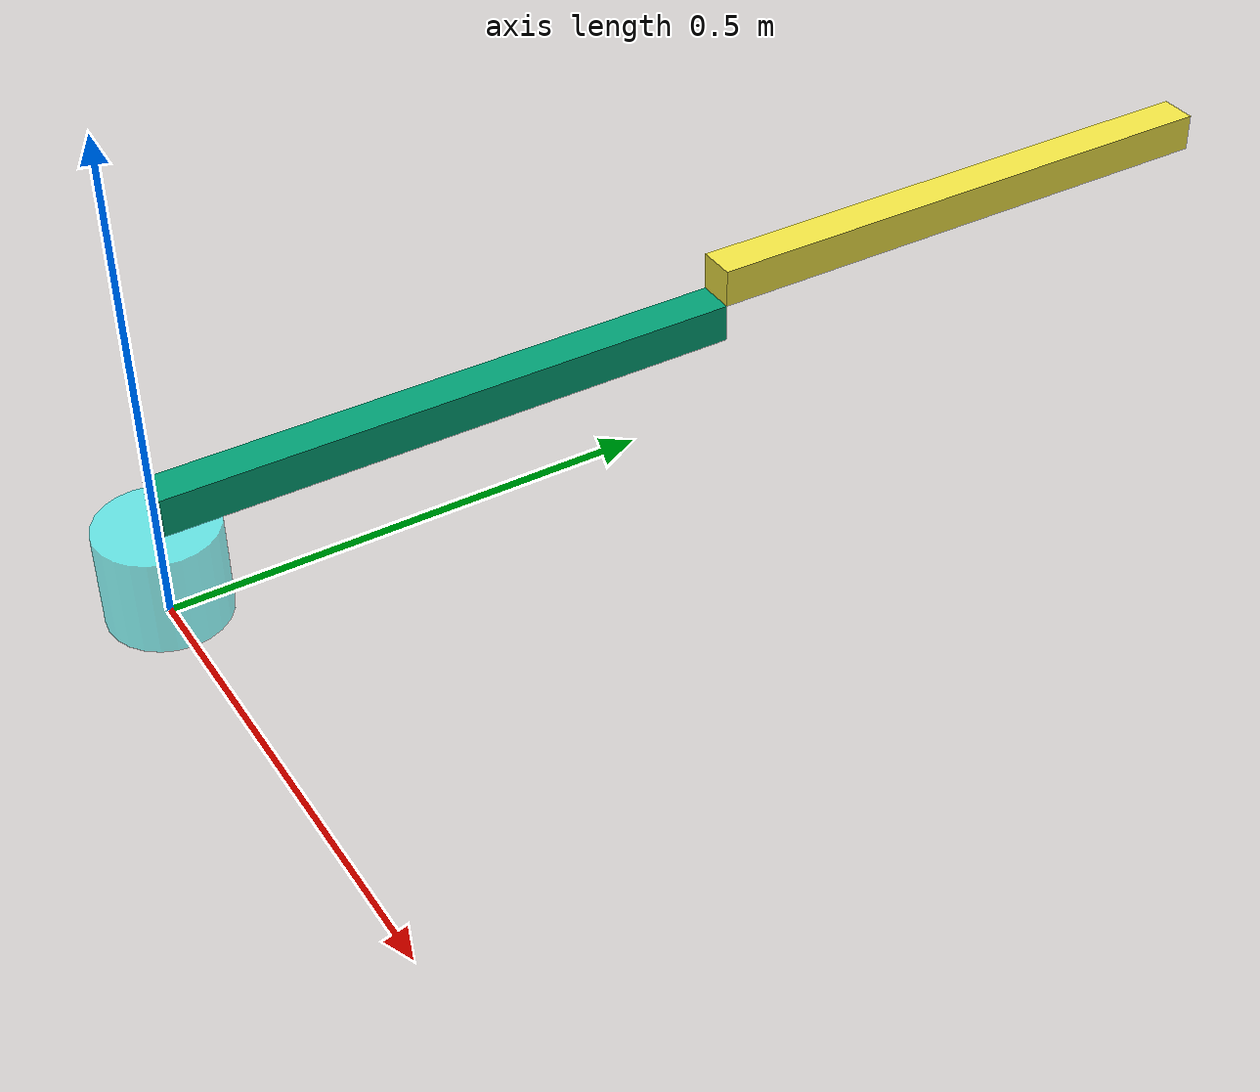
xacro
<?xml version="1.0"?>
<robot xmlns:xacro="http://www.ros.org/wiki/xacro">

    <xacro:include filename="inertial_macros.xacro"/>

    <xacro:property name="shoulder_height" value="0.1" />
    <xacro:property name="shoulder_radius" value="0.06" />

    <xacro:property name="upperarm_length" value="0.6" />
    <xacro:property name="upperarm_width" value="0.04" />

    <xacro:property name="forearm_length" value="0.6" />
    <xacro:property name="forearm_width" value="0.04" />

    <material name="white">
        <color rgba="1 1 1 1" />
    </material>

    <link name="base_link"></link>

    <joint name="odrive_joint" type="fixed">
        <parent link="base_link"/>
        <child link="odrive_base"/>
    </joint>

    <link name="odrive_base">
        <visual>
            <geometry>
                <cylinder length="${shoulder_height}" radius="${shoulder_radius}"/>
            </geometry>
            <material name="Black">
                <color rgba="0 1.0 1.0 .50"/>
            </material>
            <origin xyz="0 0 ${shoulder_height/2}"/>
        </visual>
        <xacro:inertial_pseudo/>
    </link>

    <joint name="shoulder" type="revolute">
        <parent link="odrive_base"/>
        <child link="upperarm"/>
        <origin xyz="0 0 ${shoulder_height}"/>
        <axis xyz="0 0 1" />
        <limit upper="${pi/2}" lower="-${pi/2}" effort=".1" velocity=".5"/>
    </joint>

    <link name="upperarm">
        <visual>
            <geometry>
                <box size="${upperarm_width} ${upperarm_length} ${upperarm_width}"/>
            </geometry>
            <origin xyz="0 ${upperarm_length/2} ${upperarm_width/2}" />
        </visual>
        <xacro:inertial_pseudo/>
    </link>

    <joint name="elbow" type="revolute">
        <parent link="upperarm"/>
        <child link="forearm"/>
        <origin xyz="0 ${upperarm_length} ${upperarm_width}"/>
        <axis xyz="0 0 1" />
        <limit upper="${pi/2}" lower="-${pi/2}" effort=".1" velocity=".5"/>
    </joint>

    <link name="forearm">
        <visual>
            <geometry>
                <box size=".04 ${forearm_length} ${forearm_width}"/>
            </geometry>
            <origin xyz="0 ${forearm_length/2} ${forearm_width/2}" />
        </visual>
        <xacro:inertial_pseudo/>
    </link>

</robot>
